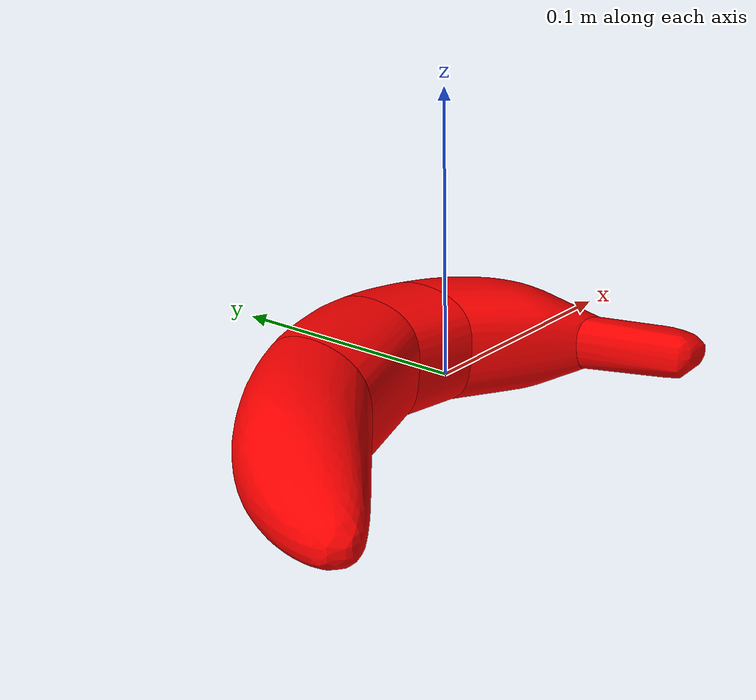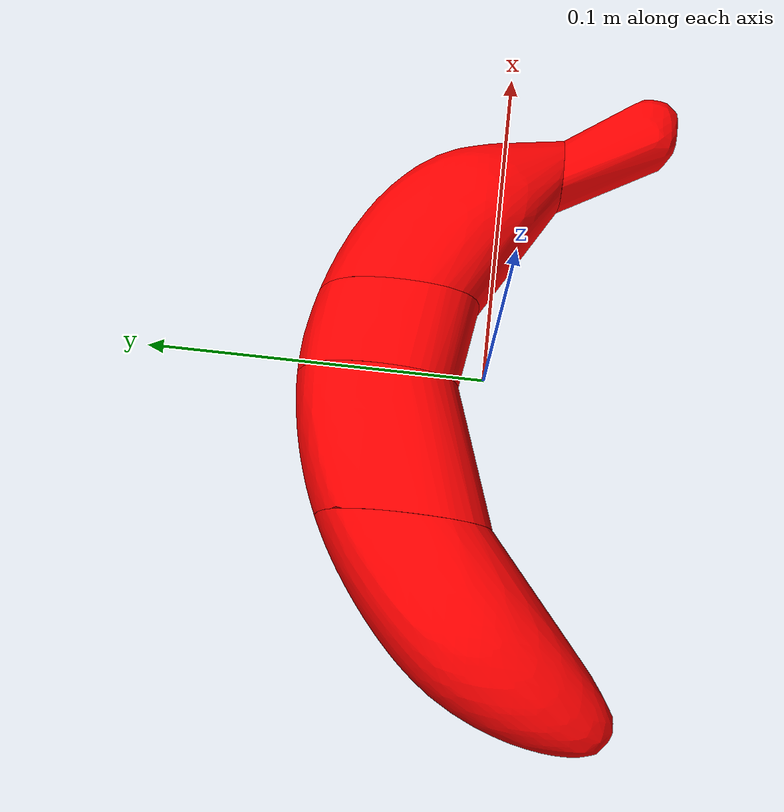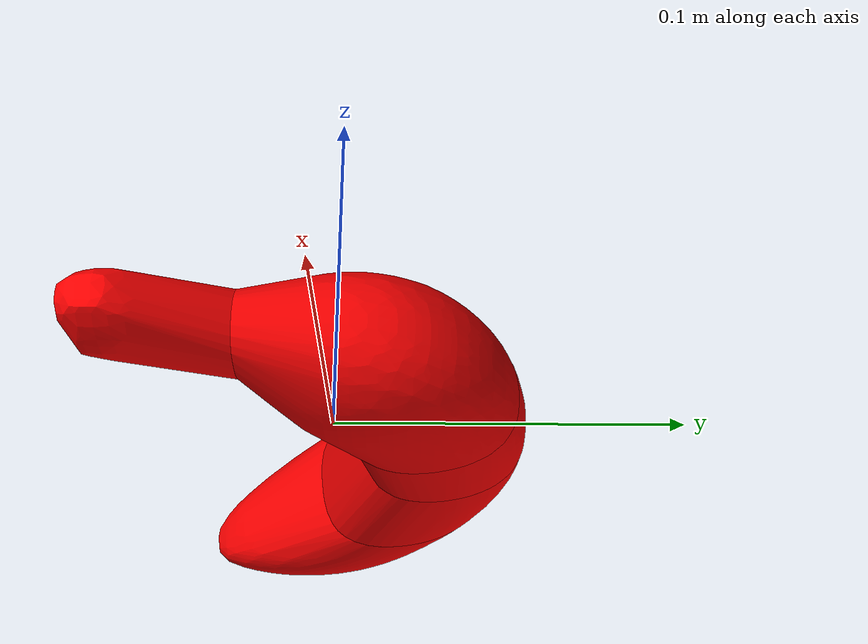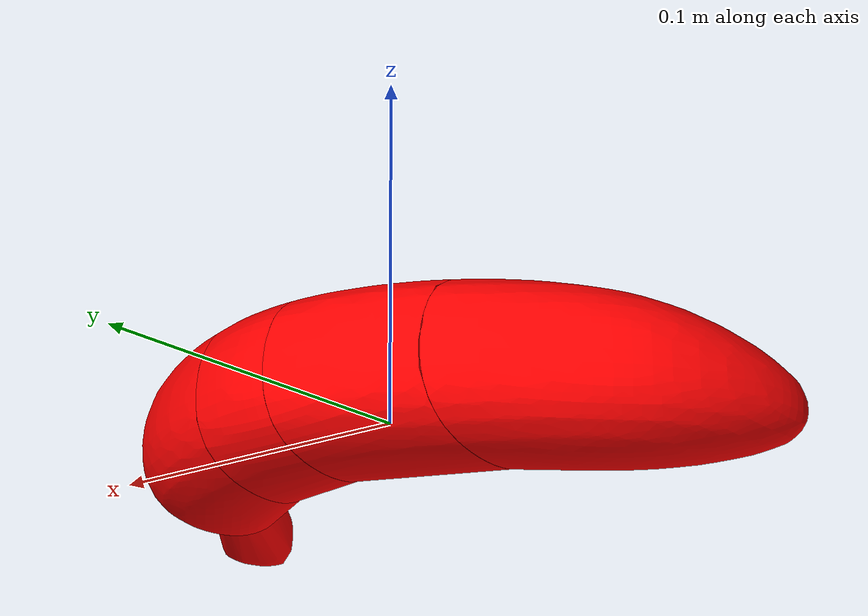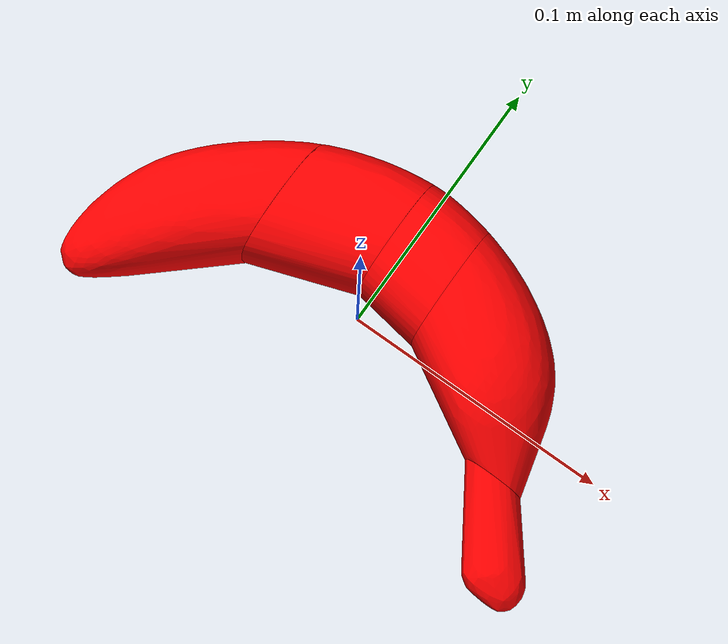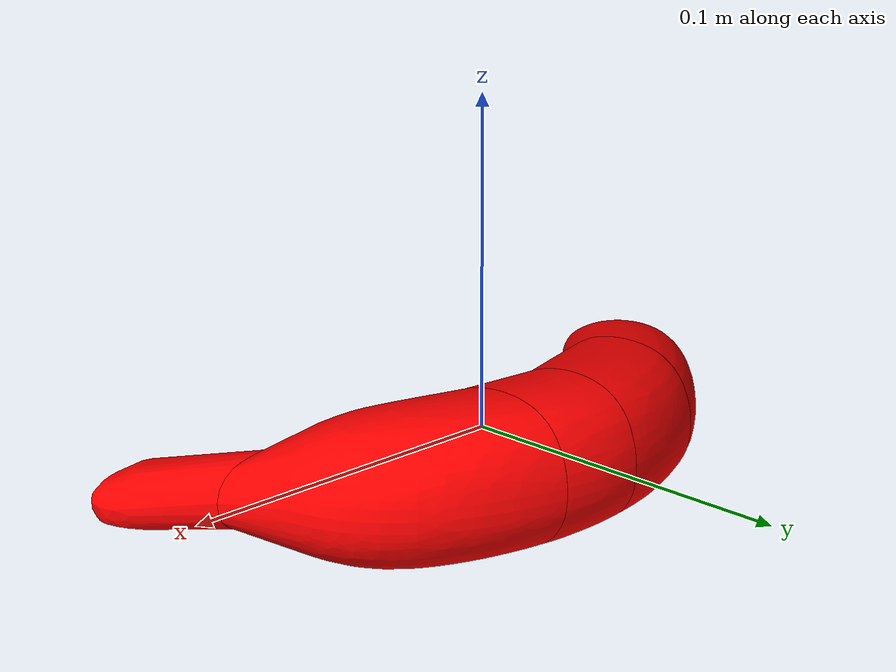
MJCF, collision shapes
<?xml version="1.0" ?>
<mujoco model="brown_banana">
	<compiler meshdir="brown_banana/meshes" texturedir="brown_banana/textures" angle="radian" autolimits="true" balanceinertia="true" boundmass="0.000001" boundinertia="0.000001"/>
	<default>
		<default class="visual">
			<geom contype="0" conaffinity="0"/>
		</default>
		<default class="collision">
			<geom rgba="1.0 0.0 0.0 0.0"/>
		</default>
	</default>
	<asset>
		<mesh name="BrownBananaFlesh" file="obj/BrownBananaFlesh.obj" scale="1.0 1.0 1.0"/>
		<mesh name="BrownBananaFlesh_001" file="stl/BrownBananaFlesh_001.stl" scale="1.0 1.0 1.0"/>
		<mesh name="BrownBananaFlesh_002" file="stl/BrownBananaFlesh_002.stl" scale="1.0 1.0 1.0"/>
		<mesh name="BrownBananaFlesh_003" file="stl/BrownBananaFlesh_003.stl" scale="1.0 1.0 1.0"/>
		<mesh name="BrownBananaFlesh_004" file="stl/BrownBananaFlesh_004.stl" scale="1.0 1.0 1.0"/>
		<mesh name="BrownBananaEndocarp" file="obj/BrownBananaEndocarp.obj" scale="1.0 1.0 1.0"/>
		<mesh name="BrownBananaEndocarp_001" file="stl/BrownBananaEndocarp_001.stl" scale="1.0 1.0 1.0"/>
		<mesh name="BrownBananaEndocarp_002" file="stl/BrownBananaEndocarp_002.stl" scale="1.0 1.0 1.0"/>
		<mesh name="BrownBananaEndocarp_003" file="stl/BrownBananaEndocarp_003.stl" scale="1.0 1.0 1.0"/>
		<mesh name="BrownBananaEndocarp_004" file="stl/BrownBananaEndocarp_004.stl" scale="1.0 1.0 1.0"/>
		<mesh name="BrownBananaExocarp" file="obj/BrownBananaExocarp.obj" scale="1.0 1.0 1.0"/>
		<mesh name="BrownBananaExocarp_001" file="stl/BrownBananaExocarp_001.stl" scale="1.0 1.0 1.0"/>
		<mesh name="BrownBananaExocarp_002" file="stl/BrownBananaExocarp_002.stl" scale="1.0 1.0 1.0"/>
		<mesh name="BrownBananaExocarp_003" file="stl/BrownBananaExocarp_003.stl" scale="1.0 1.0 1.0"/>
		<mesh name="BrownBananaExocarp_004" file="stl/BrownBananaExocarp_004.stl" scale="1.0 1.0 1.0"/>
		<mesh name="BrownBananaExocarp_005" file="stl/BrownBananaExocarp_005.stl" scale="1.0 1.0 1.0"/>
		<material name="M_BrownBananaFlesh" texture="T_BrownBananaFlesh"/>
		<material name="M_BrownBananaEndocarp" texture="T_BrownBananaEndocarp"/>
		<material name="M_BrownBananaExocarp" texture="T_BrownBananaExocarp"/>
		<texture name="T_BrownBananaFlesh" type="2d" file="T_BrownBananaFlesh.png"/>
		<texture name="T_BrownBananaEndocarp" type="2d" file="T_BrownBananaEndocarp.png"/>
		<texture name="T_BrownBananaExocarp" type="2d" file="T_BrownBananaExocarp.png"/>
	</asset>
	<worldbody>
		<body name="brown_banana" pos="0.0 0.0 0.0" quat="1.0 0.0 0.0 0.0">
			<body name="brown_banana_flesh" pos="0.0 0.0 0.0" quat="1.0 0.0 0.0 0.0">
				<inertial mass="0.1676524132490158" pos="-0.0118278032168746 0.01614161767065525 -0.0005833548493683338" quat="0.9997403621673584 0.013819505460560322 -0.003552687354385853 0.01776585727930069" diaginertia="0.0001078555578715168 0.0003942005569115281 0.0004740207514259964"/>
				<geom name="BrownBananaFlesh" type="mesh" pos="0.0 0.0 0.0" quat="1.0 0.0 0.0 0.0" mesh="BrownBananaFlesh" material="M_BrownBananaFlesh" class="visual"/>
				<geom name="BrownBananaFlesh_001" type="mesh" pos="0.0 0.0 0.0" quat="1.0 0.0 0.0 0.0" mesh="BrownBananaFlesh_001" class="collision"/>
				<geom name="BrownBananaFlesh_002" type="mesh" pos="0.0 0.0 0.0" quat="1.0 0.0 0.0 0.0" mesh="BrownBananaFlesh_002" class="collision"/>
				<geom name="BrownBananaFlesh_003" type="mesh" pos="0.0 0.0 0.0" quat="1.0 0.0 0.0 0.0" mesh="BrownBananaFlesh_003" class="collision"/>
				<geom name="BrownBananaFlesh_004" type="mesh" pos="0.0 0.0 0.0" quat="1.0 0.0 0.0 0.0" mesh="BrownBananaFlesh_004" class="collision"/>
			</body>
			<body name="brown_banana_exocarp" pos="0.0 0.0 0.0" quat="1.0 0.0 0.0 0.0">
				<inertial mass="0.014691445045173168" pos="-0.0066515496000647545 0.009779829531908035 -0.0013910778798162937" quat="0.9992649555206299 0.03558436408638954 0.0030219336040318012 -0.01393619179725647" diaginertia="1.3269759620015975e-05 4.8371068260166794e-05 5.6319702707696706e-05"/>
				<geom name="BrownBananaExocarp" type="mesh" pos="0.0 0.0 0.0" quat="1.0 0.0 0.0 0.0" mesh="BrownBananaExocarp" material="M_BrownBananaExocarp" class="visual"/>
				<geom name="BrownBananaExocarp_001" type="mesh" pos="0.0 0.0 0.0" quat="1.0 0.0 0.0 0.0" mesh="BrownBananaExocarp_001" class="collision"/>
				<geom name="BrownBananaExocarp_002" type="mesh" pos="0.0 0.0 0.0" quat="1.0 0.0 0.0 0.0" mesh="BrownBananaExocarp_002" class="collision"/>
				<geom name="BrownBananaExocarp_003" type="mesh" pos="0.0 0.0 0.0" quat="1.0 0.0 0.0 0.0" mesh="BrownBananaExocarp_003" class="collision"/>
				<geom name="BrownBananaExocarp_004" type="mesh" pos="0.0 0.0 0.0" quat="1.0 0.0 0.0 0.0" mesh="BrownBananaExocarp_004" class="collision"/>
				<geom name="BrownBananaExocarp_005" type="mesh" pos="0.0 0.0 0.0" quat="1.0 0.0 0.0 0.0" mesh="BrownBananaExocarp_005" class="collision"/>
			</body>
			<body name="brown_banana_endocarp" pos="0.0 0.0 0.0" quat="1.0 0.0 0.0 0.0">
				<inertial mass="0.003866063430905342" pos="-0.012372993864119053 0.013134108856320381 -0.0009401712450198829" quat="0.999281108379364 0.020062299445271492 -0.0038647563196718693 0.031934816390275955" diaginertia="3.129310016447562e-06 1.1444139090599492e-05 1.3238073734100908e-05"/>
				<geom name="BrownBananaEndocarp" type="mesh" pos="0.0 0.0 0.0" quat="1.0 0.0 0.0 0.0" mesh="BrownBananaEndocarp" material="M_BrownBananaEndocarp" class="visual"/>
				<geom name="BrownBananaEndocarp_001" type="mesh" pos="0.0 0.0 0.0" quat="1.0 0.0 0.0 0.0" mesh="BrownBananaEndocarp_001" class="collision"/>
				<geom name="BrownBananaEndocarp_002" type="mesh" pos="0.0 0.0 0.0" quat="1.0 0.0 0.0 0.0" mesh="BrownBananaEndocarp_002" class="collision"/>
				<geom name="BrownBananaEndocarp_003" type="mesh" pos="0.0 0.0 0.0" quat="1.0 0.0 0.0 0.0" mesh="BrownBananaEndocarp_003" class="collision"/>
				<geom name="BrownBananaEndocarp_004" type="mesh" pos="0.0 0.0 0.0" quat="1.0 0.0 0.0 0.0" mesh="BrownBananaEndocarp_004" class="collision"/>
			</body>
		</body>
	</worldbody>
	<equality/>
</mujoco>
